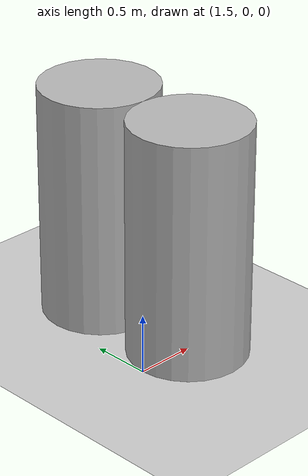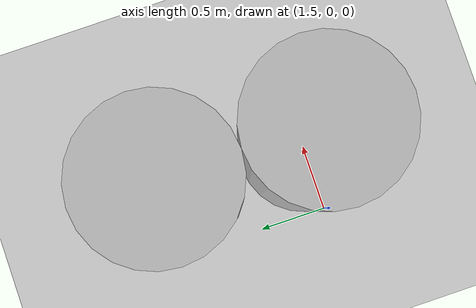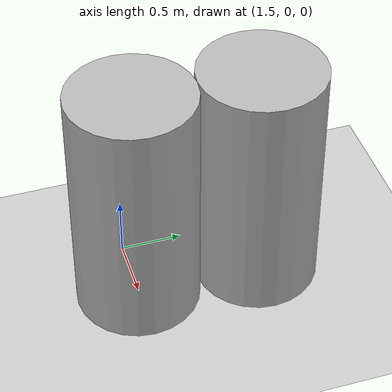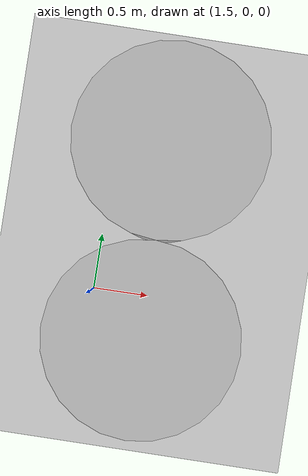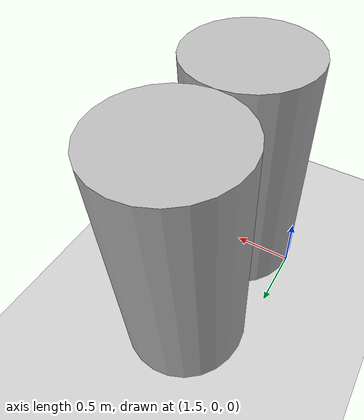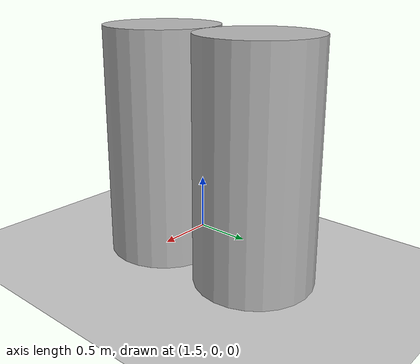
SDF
<?xml version="1.0" encoding="utf-8"?>
<?xml version="1.0" ?>
<sdf version='1.4'>
  <world name='default'>

    <physics type='ode'>
      <max_step_size>0.001</max_step_size>
      <real_time_factor>1</real_time_factor>
      <real_time_update_rate>1000</real_time_update_rate>
      <magnetic_field>34 0 -36</magnetic_field>
      <gravity>0 0 -9.8</gravity>
    </physics>

    <spherical_coordinates>
      <surface_model>EARTH_WGS84</surface_model>
      <latitude_deg>0</latitude_deg>
      <longitude_deg>0</longitude_deg>
      <elevation>0</elevation>
      <heading_deg>0</heading_deg>
    </spherical_coordinates>

    <!-- A global light source -->
   <scene>
      <sky>
        <clouds>
          <speed>12</speed>
        </clouds>
      </sky>
   </scene>

   <include>
     <uri>model://sun</uri>
   </include>

    <!-- A ground plane -->
    <include>
      <uri>model://ground_plane</uri>
    </include>

    <!-- Obstacle1 -->
    <!-- set model name to show the difference of tree -->
    <model name="sub_target_tree1" >
    <include>
      <uri>model://cylinder1</uri>
      <pose>2 0 1 0 0 0</pose>
      <static>true</static>
    </include>
    </model>

    <!-- Obstacle2 -->
    <model name="sub_target_tree2" >
    <include>
      <uri>model://cylinder1</uri>
      <pose>2 1 1 0 0 0</pose>
      <static>true</static>
    </include>
    </model>

  </world>
</sdf>

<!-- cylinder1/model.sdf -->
<sdf version="1.4">
<model name="cylinder1">
  <pose>0 0 1 0 0 0</pose>
    <link name="link">
      <inertial>
        <mass>1.0</mass>
        <inertia>
          <ixx>0.083</ixx>
          <ixy>0.0</ixy>
          <ixz>0.0</ixz>
          <iyy>0.083</iyy>
          <iyz>0.0</iyz>
          <izz>0.083</izz>
        </inertia>
      </inertial>
      <collision name="collision">
        <geometry>
          <cylinder>
	    <radius>0.5</radius>
            <length>2</length>
          </cylinder>
        </geometry>
      </collision>
      <visual name="visual">
        <geometry>
          <cylinder>
	    <radius>0.5</radius>
            <length>2</length>
          </cylinder>
        </geometry>
      </visual>
    </link>

    <plugin name="model_push" filename="libmodel_push.so"/>
  </model>
</sdf>
